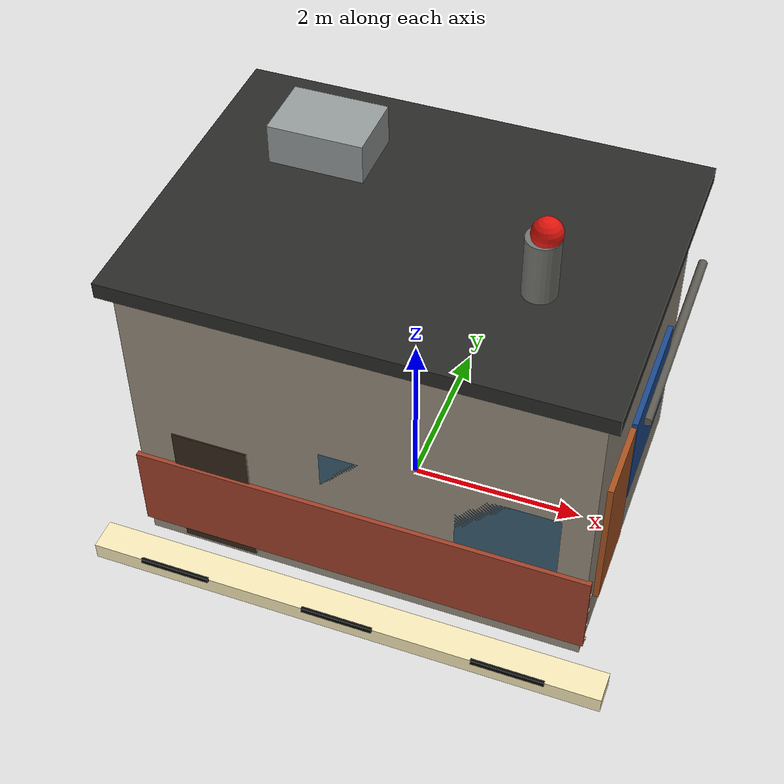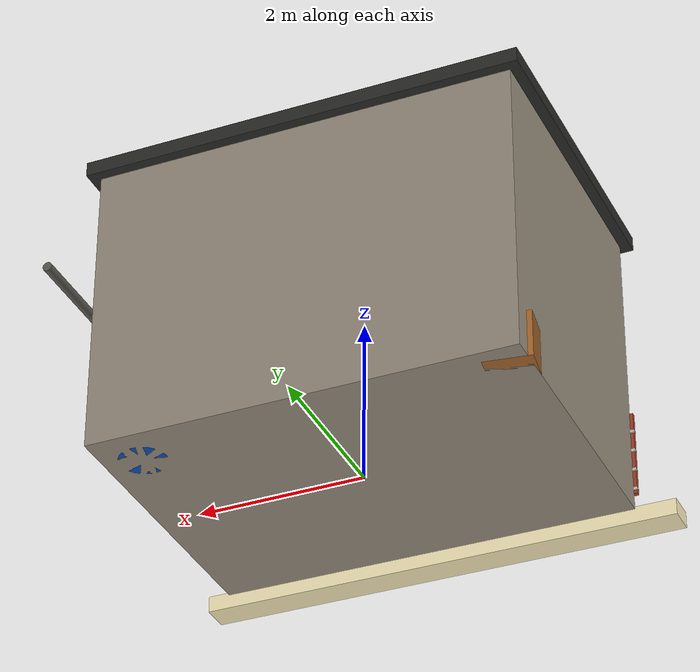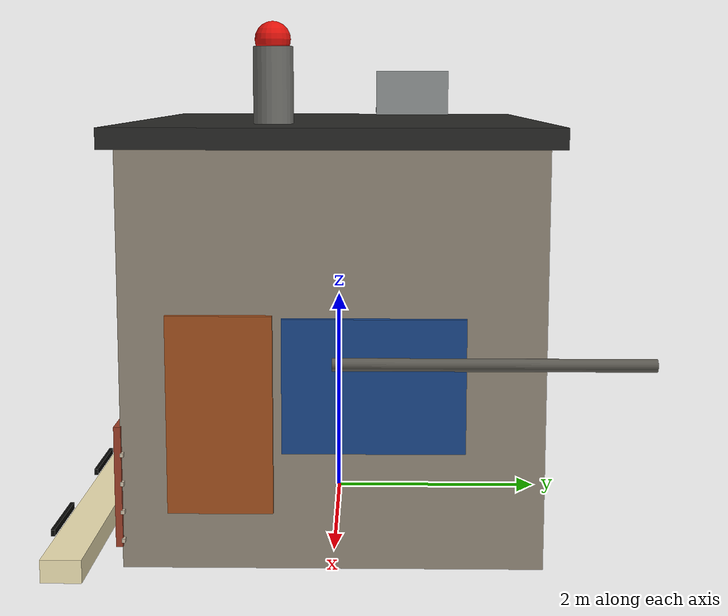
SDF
<?xml version="1.0" ?>
<sdf version="1.5">
    <model name="textured_slam_block">
        <static>true</static>

        <link name="building_shell">
            <pose>0 0 1.8 0 0 0</pose>
            <collision name="shell_collision">
                <geometry>
                    <box>
                        <size>5.0 3.6 3.6</size>
                    </box>
                </geometry>
            </collision>
            <visual name="main_concrete_wall">
                <geometry>
                    <box>
                        <size>5.0 3.6 3.6</size>
                    </box>
                </geometry>
                <material>
                    <ambient>0.46 0.43 0.38 1</ambient>
                    <diffuse>0.58 0.54 0.48 1</diffuse>
                    <specular>0.08 0.08 0.07 1</specular>
                </material>
            </visual>
        </link>

        <link name="front_facade_details">
            <pose>0 -1.82 0 0 0 0</pose>

            <visual name="brick_band_lower">
                <pose>0 0 0.72 0 0 0</pose>
                <geometry>
                    <box>
                        <size>5.08 0.06 1.05</size>
                    </box>
                </geometry>
                <material>
                    <ambient>0.45 0.18 0.11 1</ambient>
                    <diffuse>0.62 0.25 0.16 1</diffuse>
                </material>
            </visual>

            <visual name="brick_mortar_stripe_0">
                <pose>0 0.035 0.25 0 0 0</pose>
                <geometry><box><size>5.1 0.03 0.035</size></box></geometry>
                <material><ambient>0.75 0.69 0.60 1</ambient><diffuse>0.82 0.76 0.67 1</diffuse></material>
            </visual>
            <visual name="brick_mortar_stripe_1">
                <pose>0 0.035 0.50 0 0 0</pose>
                <geometry><box><size>5.1 0.03 0.035</size></box></geometry>
                <material><ambient>0.75 0.69 0.60 1</ambient><diffuse>0.82 0.76 0.67 1</diffuse></material>
            </visual>
            <visual name="brick_mortar_stripe_2">
                <pose>0 0.035 0.75 0 0 0</pose>
                <geometry><box><size>5.1 0.03 0.035</size></box></geometry>
                <material><ambient>0.75 0.69 0.60 1</ambient><diffuse>0.82 0.76 0.67 1</diffuse></material>
            </visual>
            <visual name="brick_mortar_stripe_3">
                <pose>0 0.035 1.00 0 0 0</pose>
                <geometry><box><size>5.1 0.03 0.035</size></box></geometry>
                <material><ambient>0.75 0.69 0.60 1</ambient><diffuse>0.82 0.76 0.67 1</diffuse></material>
            </visual>

            <visual name="front_door">
                <pose>-1.65 0.045 0.88 0 0 0</pose>
                <geometry>
                    <box>
                        <size>0.86 0.08 1.65</size>
                    </box>
                </geometry>
                <material>
                    <ambient>0.10 0.08 0.055 1</ambient>
                    <diffuse>0.20 0.15 0.10 1</diffuse>
                    <specular>0.15 0.12 0.08 1</specular>
                </material>
            </visual>
            <visual name="front_door_handle">
                <pose>-1.28 0.095 0.92 0 0 0</pose>
                <geometry><sphere><radius>0.055</radius></sphere></geometry>
                <material><ambient>0.95 0.74 0.28 1</ambient><diffuse>1.0 0.82 0.36 1</diffuse></material>
            </visual>

            <visual name="glass_window_left">
                <pose>0.15 0.05 1.62 0 0 0</pose>
                <geometry><box><size>1.10 0.06 0.82</size></box></geometry>
                <material>
                    <ambient>0.10 0.20 0.27 0.75</ambient>
                    <diffuse>0.16 0.36 0.48 0.75</diffuse>
                    <specular>0.45 0.65 0.75 1</specular>
                </material>
            </visual>
            <visual name="glass_window_right">
                <pose>1.62 0.05 1.62 0 0 0</pose>
                <geometry><box><size>1.10 0.06 0.82</size></box></geometry>
                <material>
                    <ambient>0.10 0.20 0.27 0.75</ambient>
                    <diffuse>0.16 0.36 0.48 0.75</diffuse>
                    <specular>0.45 0.65 0.75 1</specular>
                </material>
            </visual>
            <visual name="window_frame_left_vertical">
                <pose>0.15 0.09 1.62 0 0 0</pose>
                <geometry><box><size>0.055 0.06 0.92</size></box></geometry>
                <material><ambient>0.08 0.08 0.08 1</ambient><diffuse>0.12 0.12 0.12 1</diffuse></material>
            </visual>
            <visual name="window_frame_right_vertical">
                <pose>1.62 0.09 1.62 0 0 0</pose>
                <geometry><box><size>0.055 0.06 0.92</size></box></geometry>
                <material><ambient>0.08 0.08 0.08 1</ambient><diffuse>0.12 0.12 0.12 1</diffuse></material>
            </visual>

            <visual name="yellow_landmark_sign">
                <pose>1.62 0.095 2.66 0 0 0</pose>
                <geometry><box><size>1.25 0.055 0.38</size></box></geometry>
                <material><ambient>0.95 0.70 0.04 1</ambient><diffuse>1.0 0.78 0.08 1</diffuse></material>
            </visual>
            <visual name="sign_black_mark">
                <pose>1.62 0.13 2.66 0 0 0</pose>
                <geometry><box><size>0.78 0.035 0.09</size></box></geometry>
                <material><ambient>0.02 0.02 0.018 1</ambient><diffuse>0.03 0.03 0.025 1</diffuse></material>
            </visual>
        </link>

        <link name="side_texture_panels">
            <pose>2.53 0 0 0 0 0</pose>
            <visual name="right_side_blue_panel">
                <pose>0 0.35 1.6 0 0 0</pose>
                <geometry><box><size>0.06 1.55 1.15</size></box></geometry>
                <material><ambient>0.07 0.18 0.35 1</ambient><diffuse>0.10 0.28 0.55 1</diffuse></material>
            </visual>
            <visual name="right_side_rust_panel">
                <pose>0 -0.95 1.35 0 0 0</pose>
                <geometry><box><size>0.065 0.9 1.7</size></box></geometry>
                <material><ambient>0.46 0.22 0.08 1</ambient><diffuse>0.65 0.32 0.12 1</diffuse></material>
            </visual>
            <visual name="right_side_pipe">
                <pose>0.055 1.35 1.8 1.5708 0 0</pose>
                <geometry><cylinder><radius>0.055</radius><length>2.7</length></cylinder></geometry>
                <material><ambient>0.18 0.18 0.17 1</ambient><diffuse>0.36 0.35 0.32 1</diffuse></material>
            </visual>
        </link>

        <link name="roof_and_equipment">
            <pose>0 0 3.67 0 0 0</pose>
            <visual name="dark_roof_slab">
                <geometry><box><size>5.25 3.85 0.18</size></box></geometry>
                <material><ambient>0.09 0.09 0.085 1</ambient><diffuse>0.16 0.16 0.15 1</diffuse></material>
            </visual>
            <collision name="roof_collision">
                <geometry><box><size>5.25 3.85 0.18</size></box></geometry>
            </collision>
            <visual name="roof_hvac_box">
                <pose>-1.25 0.75 0.35 0 0 0</pose>
                <geometry><box><size>1.05 0.75 0.45</size></box></geometry>
                <material><ambient>0.38 0.40 0.40 1</ambient><diffuse>0.58 0.60 0.60 1</diffuse></material>
            </visual>
            <visual name="roof_vent_cylinder">
                <pose>1.45 -0.55 0.42 0 0 0</pose>
                <geometry><cylinder><radius>0.18</radius><length>0.7</length></cylinder></geometry>
                <material><ambient>0.22 0.22 0.22 1</ambient><diffuse>0.45 0.45 0.43 1</diffuse></material>
            </visual>
            <visual name="roof_red_marker">
                <pose>1.48 -0.55 0.83 0 0 0</pose>
                <geometry><sphere><radius>0.16</radius></sphere></geometry>
                <material><ambient>0.62 0.04 0.03 1</ambient><diffuse>0.9 0.08 0.05 1</diffuse></material>
            </visual>
        </link>

        <link name="street_clutter">
            <pose>0 0 0 0 0 0</pose>
            <collision name="curb_collision">
                <pose>0 -2.25 0.10 0 0 0</pose>
                <geometry><box><size>5.8 0.35 0.20</size></box></geometry>
            </collision>
            <visual name="painted_curb">
                <pose>0 -2.25 0.10 0 0 0</pose>
                <geometry><box><size>5.8 0.35 0.20</size></box></geometry>
                <material><ambient>0.82 0.78 0.62 1</ambient><diffuse>0.96 0.91 0.72 1</diffuse></material>
            </visual>
            <visual name="curb_black_stripe_0">
                <pose>-1.9 -2.45 0.23 0 0 0</pose>
                <geometry><box><size>0.8 0.035 0.06</size></box></geometry>
                <material><ambient>0.02 0.02 0.018 1</ambient><diffuse>0.03 0.03 0.025 1</diffuse></material>
            </visual>
            <visual name="curb_black_stripe_1">
                <pose>0.0 -2.45 0.23 0 0 0</pose>
                <geometry><box><size>0.8 0.035 0.06</size></box></geometry>
                <material><ambient>0.02 0.02 0.018 1</ambient><diffuse>0.03 0.03 0.025 1</diffuse></material>
            </visual>
            <visual name="curb_black_stripe_2">
                <pose>1.9 -2.45 0.23 0 0 0</pose>
                <geometry><box><size>0.8 0.035 0.06</size></box></geometry>
                <material><ambient>0.02 0.02 0.018 1</ambient><diffuse>0.03 0.03 0.025 1</diffuse></material>
            </visual>

            <visual name="crate_stack_a">
                <pose>-2.25 1.35 0.28 0 0 0.15</pose>
                <geometry><box><size>0.55 0.50 0.56</size></box></geometry>
                <material><ambient>0.48 0.28 0.12 1</ambient><diffuse>0.64 0.39 0.17 1</diffuse></material>
            </visual>
            <collision name="crate_stack_a_collision">
                <pose>-2.25 1.35 0.28 0 0 0.15</pose>
                <geometry><box><size>0.55 0.50 0.56</size></box></geometry>
            </collision>
            <visual name="crate_stack_b">
                <pose>-1.85 1.25 0.82 0 0 -0.2</pose>
                <geometry><box><size>0.48 0.44 0.46</size></box></geometry>
                <material><ambient>0.42 0.23 0.10 1</ambient><diffuse>0.58 0.34 0.15 1</diffuse></material>
            </visual>

            <visual name="blue_barrel">
                <pose>2.05 1.28 0.43 0 0 0</pose>
                <geometry><cylinder><radius>0.28</radius><length>0.86</length></cylinder></geometry>
                <material><ambient>0.04 0.17 0.38 1</ambient><diffuse>0.05 0.30 0.68 1</diffuse></material>
            </visual>
            <collision name="blue_barrel_collision">
                <pose>2.05 1.28 0.43 0 0 0</pose>
                <geometry><cylinder><radius>0.28</radius><length>0.86</length></cylinder></geometry>
            </collision>
            <visual name="barrel_white_band">
                <pose>2.05 1.28 0.63 0 0 0</pose>
                <geometry><cylinder><radius>0.285</radius><length>0.08</length></cylinder></geometry>
                <material><ambient>0.80 0.82 0.80 1</ambient><diffuse>0.95 0.96 0.93 1</diffuse></material>
            </visual>
        </link>
    </model>
</sdf>
